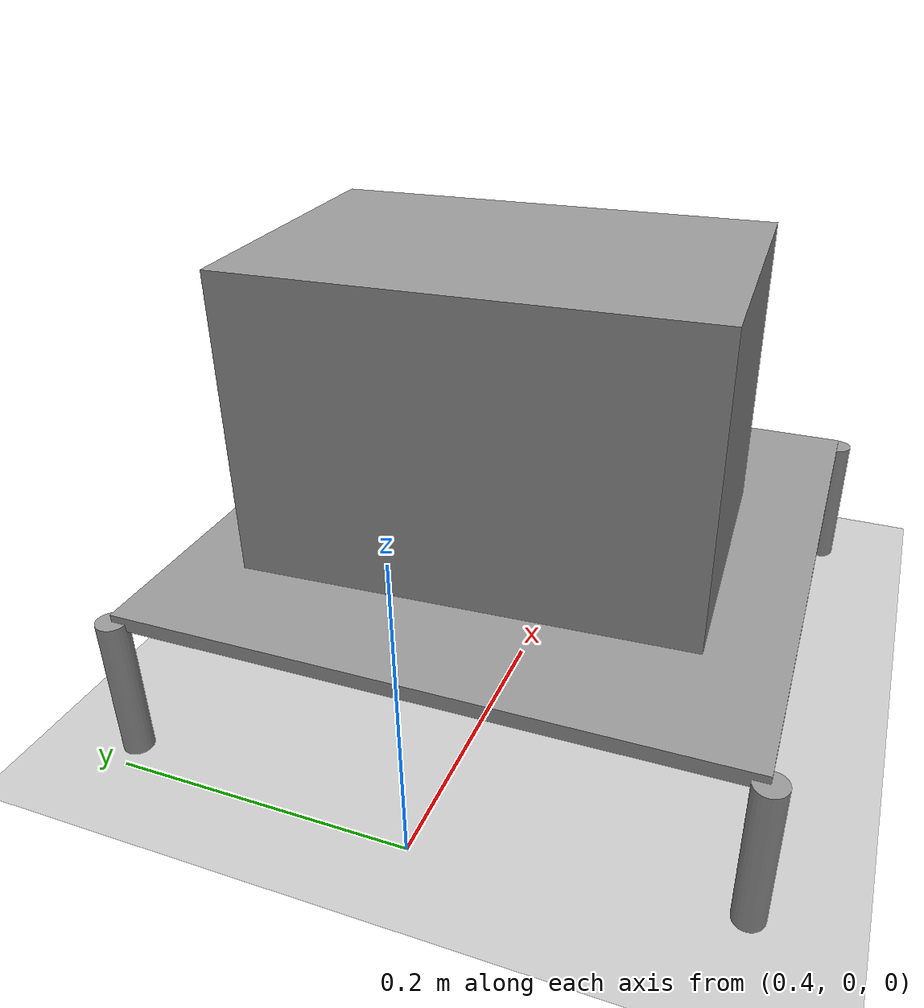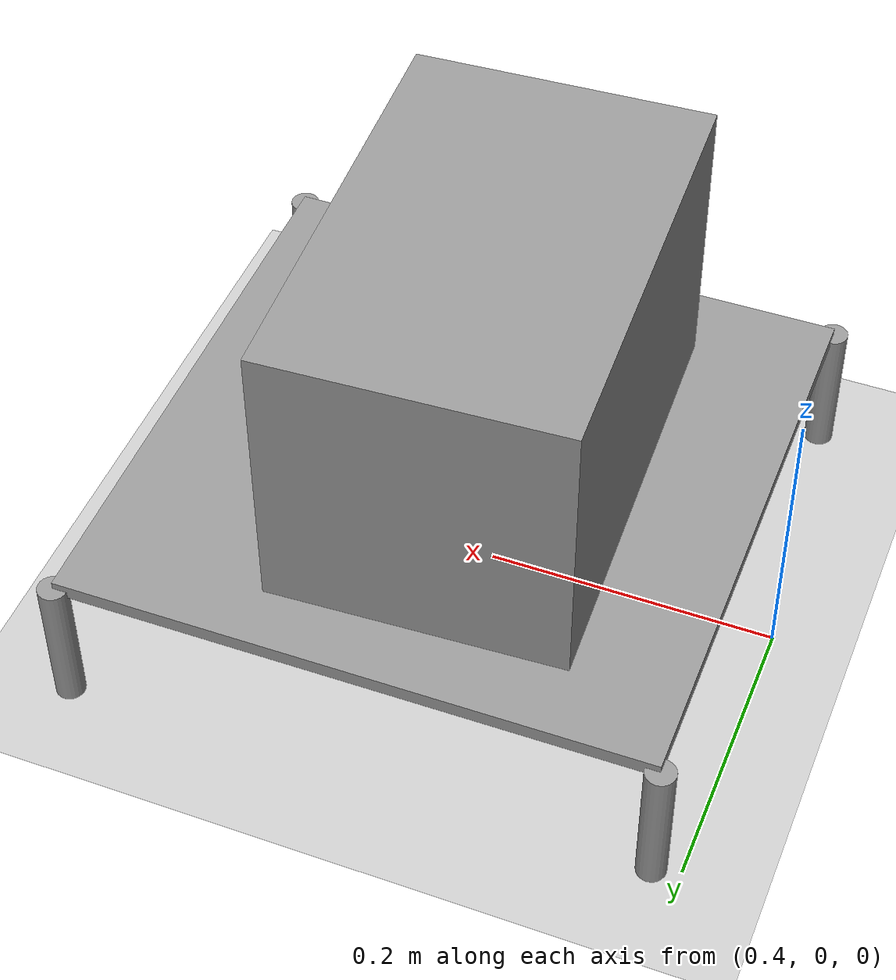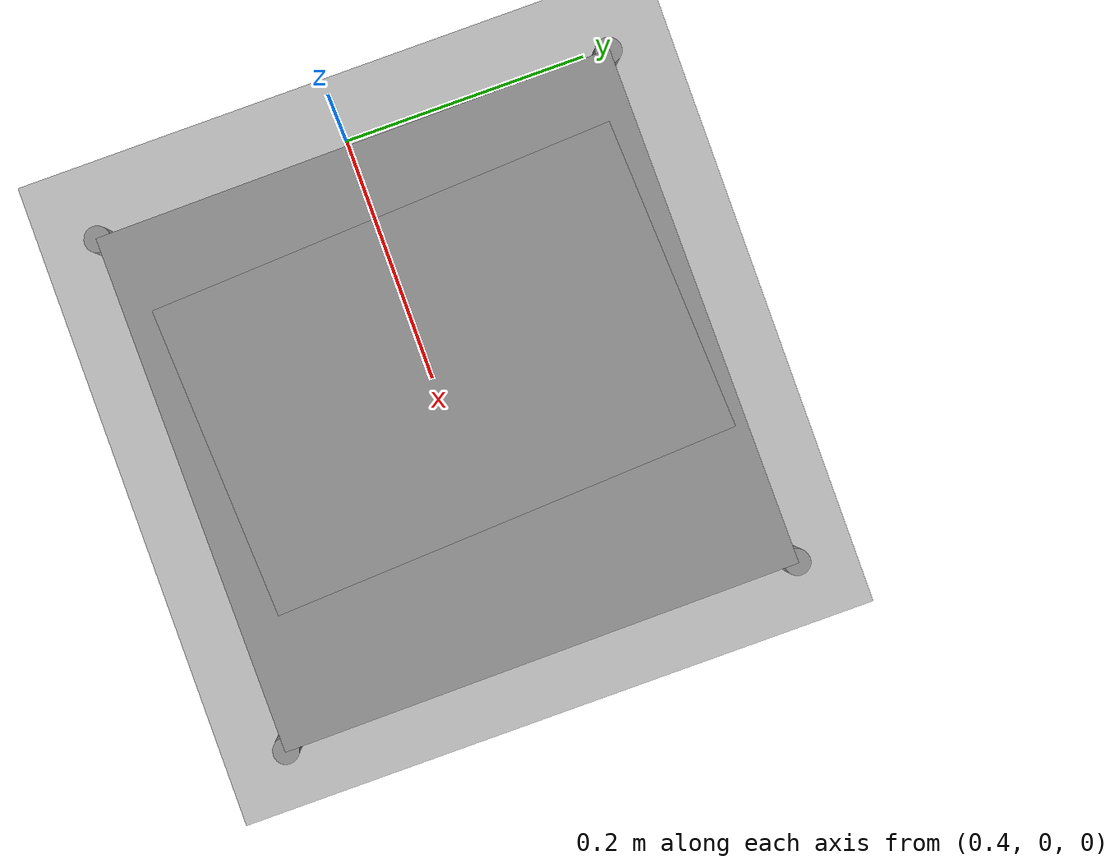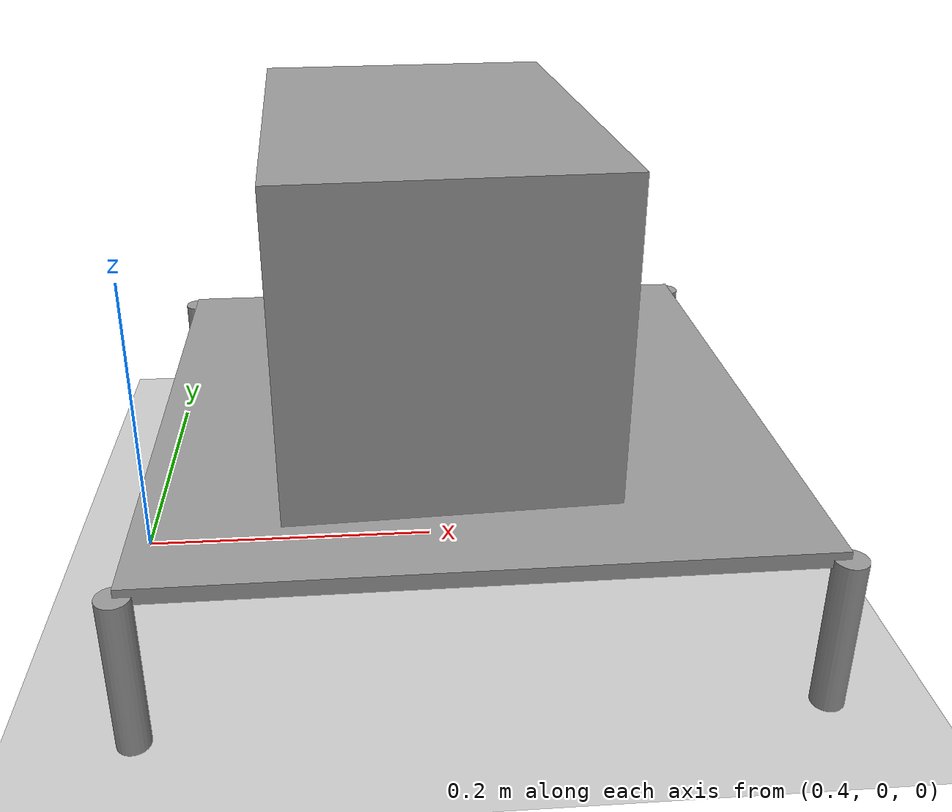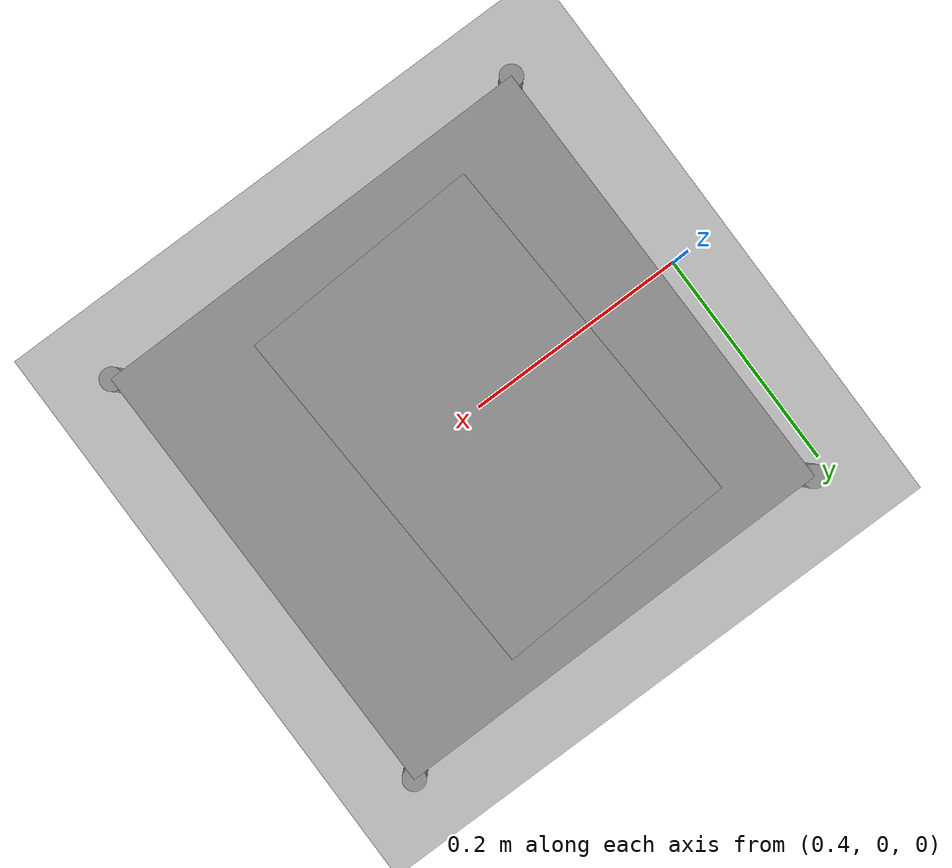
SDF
<sdf version="1.7">
 <world name="default">
  <light name="sun" type="directional">
   <pose>0 0 10 0 -0 0</pose>
   <diffuse>0.8 0.8 0.8 1</diffuse>
   <specular>0.2 0.2 0.2 1</specular>
   <attenuation>
    <range>1000</range>
    <constant>0.9</constant>
    <linear>0.01</linear>
    <quadratic>0.001</quadratic>
   </attenuation>
   <direction>-0.5 0.1 -0.9</direction>
   <spot><inner_angle>0</inner_angle><outer_angle>0</outer_angle><falloff>0</falloff></spot>
  </light>
  <model name="ground_plane">
   <static>1</static>
   <link name="link">
    <collision name="collision">
     <geometry><plane><normal>0 0 1</normal><size>100 100</size></plane></geometry>
     <surface>
      <contact><collide_bitmask>65535</collide_bitmask></contact>
      <friction><ode><mu>100</mu><mu2>50</mu2></ode></friction>
     </surface>
    </collision>
    <visual name="visual">
     <cast_shadows>0</cast_shadows>
     <geometry><plane><normal>0 0 1</normal><size>100 100</size></plane></geometry>
     <material>
      <script><uri>file://media/materials/scripts/gazebo.material</uri><name>Gazebo/Grey</name></script>
     </material>
    </visual>
   </link>
  </model>
  <gravity>0 0 -9.8</gravity>
  <magnetic_field>6e-06 2.3e-05 -4.2e-05</magnetic_field>
  <atmosphere type="adiabatic"/>
  <physics type="ode">
   <max_step_size>0.001</max_step_size>
   <real_time_factor>1</real_time_factor>
   <real_time_update_rate>1000</real_time_update_rate>
  </physics>
  <scene><ambient>0.4 0.4 0.4 1</ambient><background>0.7 0.7 0.7 1</background><shadows>1</shadows></scene>
  <spherical_coordinates>
   <surface_model>EARTH_WGS84</surface_model>
   <latitude_deg>0</latitude_deg>
   <longitude_deg>0</longitude_deg>
   <elevation>0</elevation>
   <heading_deg>0</heading_deg>
  </spherical_coordinates>
  <model name="box">
   <link name="link_2">
    <inertial>
     <mass>1</mass>
     <inertia>
      <ixx>0.0108333</ixx>
      <ixy>0</ixy>
      <ixz>0</ixz>
      <iyy>0.00666667</iyy>
      <iyz>0</iyz>
      <izz>0.0108333</izz>
     </inertia>
    </inertial>
    <visual name="visual">
     <geometry><box><size>0.2 0.3 0.2</size></box></geometry>
     <material>
      <lighting>1</lighting>
      <script><uri>file://media/materials/scripts/gazebo.material</uri><name>Gazebo/Grey</name></script>
      <shader type="pixel"><normal_map>__default__</normal_map></shader>
      <ambient>0.3 0.3 0.3 1</ambient>
      <diffuse>0.7 0.7 0.7 1</diffuse>
      <specular>0.01 0.01 0.01 1</specular>
      <emissive>0 0 0 1</emissive>
     </material>
    </visual>
    <collision name="collision">
     <geometry><box><size>0.2 0.3 0.2</size></box></geometry>
     <surface>
      <friction>
       <ode><mu>1</mu><mu2>1</mu2><fdir1>0 0 0</fdir1><slip1>0</slip1><slip2>0</slip2></ode>
       <torsional>
        <coefficient>1</coefficient>
        <patch_radius>0</patch_radius>
        <surface_radius>0</surface_radius>
        <use_patch_radius>1</use_patch_radius>
        <ode><slip>0</slip></ode>
       </torsional>
      </friction>
      <bounce><restitution_coefficient>0</restitution_coefficient><threshold>1e+06</threshold></bounce>
      <contact>
       <collide_without_contact>0</collide_without_contact>
       <collide_without_contact_bitmask>1</collide_without_contact_bitmask>
       <collide_bitmask>1</collide_bitmask>
       <ode>
        <soft_cfm>0</soft_cfm>
        <soft_erp>0.2</soft_erp>
        <kp>1e+13</kp>
        <kd>1</kd>
        <max_vel>0.01</max_vel>
        <min_depth>0</min_depth>
       </ode>
       <bullet>
        <split_impulse>1</split_impulse>
        <split_impulse_penetration_threshold>-0.01</split_impulse_penetration_threshold>
        <soft_cfm>0</soft_cfm>
        <soft_erp>0.2</soft_erp>
        <kp>1e+13</kp>
        <kd>1</kd>
       </bullet>
      </contact>
     </surface>
    </collision>
   </link>
   <static>0</static>
   <pose>0.6 0.010834 0.204994 -1e-06 -6e-05 0.048793</pose>
  </model>
  <model name="sunban">
   <link name="link_0">
    <inertial>
     <mass>10</mass>
     <inertia>
      <ixx>0.133417</ixx>
      <ixy>0</ixy>
      <ixz>0</ixz>
      <iyy>0.133417</iyy>
      <iyz>0</iyz>
      <izz>0.266667</izz>
     </inertia>
    </inertial>
    <pose>0.293343 -0.238204 0 0 -0 0</pose>
    <visual name="visual">
     <geometry><box><size>0.4 0.4 0.01</size></box></geometry>
     <material>
      <lighting>1</lighting>
      <script><uri>file://media/materials/scripts/gazebo.material</uri><name>Gazebo/Grey</name></script>
      <shader type="pixel"><normal_map>__default__</normal_map></shader>
      <ambient>0.3 0.3 0.3 1</ambient>
      <diffuse>0.7 0.7 0.7 1</diffuse>
      <specular>0.01 0.01 0.01 1</specular>
      <emissive>0 0 0 1</emissive>
     </material>
    </visual>
    <collision name="collision">
     <geometry><box><size>0.4 0.4 0.01</size></box></geometry>
     <surface>
      <friction>
       <ode><mu>1</mu><mu2>1</mu2><fdir1>0 0 0</fdir1><slip1>0</slip1><slip2>0</slip2></ode>
       <torsional>
        <coefficient>1</coefficient>
        <patch_radius>0</patch_radius>
        <surface_radius>0</surface_radius>
        <use_patch_radius>1</use_patch_radius>
        <ode><slip>0</slip></ode>
       </torsional>
      </friction>
      <bounce><restitution_coefficient>0</restitution_coefficient><threshold>1e+06</threshold></bounce>
      <contact>
       <collide_without_contact>0</collide_without_contact>
       <collide_without_contact_bitmask>1</collide_without_contact_bitmask>
       <collide_bitmask>1</collide_bitmask>
       <ode>
        <soft_cfm>0</soft_cfm>
        <soft_erp>0.2</soft_erp>
        <kp>1e+13</kp>
        <kd>1</kd>
        <max_vel>0.01</max_vel>
        <min_depth>0</min_depth>
       </ode>
       <bullet>
        <split_impulse>1</split_impulse>
        <split_impulse_penetration_threshold>-0.01</split_impulse_penetration_threshold>
        <soft_cfm>0</soft_cfm>
        <soft_erp>0.2</soft_erp>
        <kp>1e+13</kp>
        <kd>1</kd>
       </bullet>
      </contact>
     </surface>
    </collision>
   </link>
   <link name="link_1">
    <inertial>
     <mass>1</mass>
     <inertia><ixx>0.145833</ixx><ixy>0</ixy><ixz>0</ixz><iyy>0.145833</iyy><iyz>0</iyz><izz>0.125</izz></inertia>
    </inertial>
    <pose>0.493343 -0.438204 -0.05 0 -0 0</pose>
    <visual name="visual">
     <geometry><cylinder><radius>0.01</radius><length>0.1</length></cylinder></geometry>
     <material>
      <lighting>1</lighting>
      <script><uri>file://media/materials/scripts/gazebo.material</uri><name>Gazebo/Grey</name></script>
      <shader type="pixel"><normal_map>__default__</normal_map></shader>
      <ambient>0.3 0.3 0.3 1</ambient>
      <diffuse>0.7 0.7 0.7 1</diffuse>
      <specular>0.01 0.01 0.01 1</specular>
      <emissive>0 0 0 1</emissive>
     </material>
    </visual>
    <collision name="collision">
     <geometry><cylinder><radius>0.01</radius><length>0.1</length></cylinder></geometry>
     <surface>
      <friction>
       <ode><mu>1</mu><mu2>1</mu2><fdir1>0 0 0</fdir1><slip1>0</slip1><slip2>0</slip2></ode>
       <torsional>
        <coefficient>1</coefficient>
        <patch_radius>0</patch_radius>
        <surface_radius>0</surface_radius>
        <use_patch_radius>1</use_patch_radius>
        <ode><slip>0</slip></ode>
       </torsional>
      </friction>
      <bounce><restitution_coefficient>0</restitution_coefficient><threshold>1e+06</threshold></bounce>
      <contact>
       <collide_without_contact>0</collide_without_contact>
       <collide_without_contact_bitmask>1</collide_without_contact_bitmask>
       <collide_bitmask>1</collide_bitmask>
       <ode>
        <soft_cfm>0</soft_cfm>
        <soft_erp>0.2</soft_erp>
        <kp>1e+13</kp>
        <kd>1</kd>
        <max_vel>0.01</max_vel>
        <min_depth>0</min_depth>
       </ode>
       <bullet>
        <split_impulse>1</split_impulse>
        <split_impulse_penetration_threshold>-0.01</split_impulse_penetration_threshold>
        <soft_cfm>0</soft_cfm>
        <soft_erp>0.2</soft_erp>
        <kp>1e+13</kp>
        <kd>1</kd>
       </bullet>
      </contact>
     </surface>
    </collision>
   </link>
   <link name="link_1_clone">
    <inertial>
     <mass>1</mass>
     <inertia><ixx>0.145833</ixx><ixy>0</ixy><ixz>0</ixz><iyy>0.145833</iyy><iyz>0</iyz><izz>0.125</izz></inertia>
    </inertial>
    <pose>0.093343 -0.038204 -0.05 0 -0 0</pose>
    <visual name="visual">
     <geometry><cylinder><radius>0.01</radius><length>0.1</length></cylinder></geometry>
     <material>
      <lighting>1</lighting>
      <script><uri>file://media/materials/scripts/gazebo.material</uri><name>Gazebo/Grey</name></script>
      <shader type="pixel"><normal_map>__default__</normal_map></shader>
      <ambient>0.3 0.3 0.3 1</ambient>
      <diffuse>0.7 0.7 0.7 1</diffuse>
      <specular>0.01 0.01 0.01 1</specular>
      <emissive>0 0 0 1</emissive>
     </material>
    </visual>
    <collision name="collision">
     <geometry><cylinder><radius>0.01</radius><length>0.1</length></cylinder></geometry>
     <surface>
      <friction>
       <ode><mu>1</mu><mu2>1</mu2><fdir1>0 0 0</fdir1><slip1>0</slip1><slip2>0</slip2></ode>
       <torsional>
        <coefficient>1</coefficient>
        <patch_radius>0</patch_radius>
        <surface_radius>0</surface_radius>
        <use_patch_radius>1</use_patch_radius>
        <ode><slip>0</slip></ode>
       </torsional>
      </friction>
      <bounce><restitution_coefficient>0</restitution_coefficient><threshold>1e+06</threshold></bounce>
      <contact>
       <collide_without_contact>0</collide_without_contact>
       <collide_without_contact_bitmask>1</collide_without_contact_bitmask>
       <collide_bitmask>1</collide_bitmask>
       <ode>
        <soft_cfm>0</soft_cfm>
        <soft_erp>0.2</soft_erp>
        <kp>1e+13</kp>
        <kd>1</kd>
        <max_vel>0.01</max_vel>
        <min_depth>0</min_depth>
       </ode>
       <bullet>
        <split_impulse>1</split_impulse>
        <split_impulse_penetration_threshold>-0.01</split_impulse_penetration_threshold>
        <soft_cfm>0</soft_cfm>
        <soft_erp>0.2</soft_erp>
        <kp>1e+13</kp>
        <kd>1</kd>
       </bullet>
      </contact>
     </surface>
    </collision>
   </link>
   <link name="link_1_clone_0">
    <inertial>
     <mass>1</mass>
     <inertia><ixx>0.145833</ixx><ixy>0</ixy><ixz>0</ixz><iyy>0.145833</iyy><iyz>0</iyz><izz>0.125</izz></inertia>
    </inertial>
    <pose>0.093343 -0.438204 -0.05 0 -0 0</pose>
    <visual name="visual">
     <geometry><cylinder><radius>0.01</radius><length>0.1</length></cylinder></geometry>
     <material>
      <lighting>1</lighting>
      <script><uri>file://media/materials/scripts/gazebo.material</uri><name>Gazebo/Grey</name></script>
      <shader type="pixel"><normal_map>__default__</normal_map></shader>
      <ambient>0.3 0.3 0.3 1</ambient>
      <diffuse>0.7 0.7 0.7 1</diffuse>
      <specular>0.01 0.01 0.01 1</specular>
      <emissive>0 0 0 1</emissive>
     </material>
    </visual>
    <collision name="collision">
     <geometry><cylinder><radius>0.01</radius><length>0.1</length></cylinder></geometry>
     <surface>
      <friction>
       <ode><mu>1</mu><mu2>1</mu2><fdir1>0 0 0</fdir1><slip1>0</slip1><slip2>0</slip2></ode>
       <torsional>
        <coefficient>1</coefficient>
        <patch_radius>0</patch_radius>
        <surface_radius>0</surface_radius>
        <use_patch_radius>1</use_patch_radius>
        <ode><slip>0</slip></ode>
       </torsional>
      </friction>
      <bounce><restitution_coefficient>0</restitution_coefficient><threshold>1e+06</threshold></bounce>
      <contact>
       <collide_without_contact>0</collide_without_contact>
       <collide_without_contact_bitmask>1</collide_without_contact_bitmask>
       <collide_bitmask>1</collide_bitmask>
       <ode>
        <soft_cfm>0</soft_cfm>
        <soft_erp>0.2</soft_erp>
        <kp>1e+13</kp>
        <kd>1</kd>
        <max_vel>0.01</max_vel>
        <min_depth>0</min_depth>
       </ode>
       <bullet>
        <split_impulse>1</split_impulse>
        <split_impulse_penetration_threshold>-0.01</split_impulse_penetration_threshold>
        <soft_cfm>0</soft_cfm>
        <soft_erp>0.2</soft_erp>
        <kp>1e+13</kp>
        <kd>1</kd>
       </bullet>
      </contact>
     </surface>
    </collision>
   </link>
   <link name="link_1_clone_1">
    <inertial>
     <mass>1</mass>
     <inertia><ixx>0.145833</ixx><ixy>0</ixy><ixz>0</ixz><iyy>0.145833</iyy><iyz>0</iyz><izz>0.125</izz></inertia>
    </inertial>
    <pose>0.493343 -0.038204 -0.05 0 -0 0</pose>
    <visual name="visual">
     <geometry><cylinder><radius>0.01</radius><length>0.1</length></cylinder></geometry>
     <material>
      <lighting>1</lighting>
      <script><uri>file://media/materials/scripts/gazebo.material</uri><name>Gazebo/Grey</name></script>
      <shader type="pixel"><normal_map>__default__</normal_map></shader>
      <ambient>0.3 0.3 0.3 1</ambient>
      <diffuse>0.7 0.7 0.7 1</diffuse>
      <specular>0.01 0.01 0.01 1</specular>
      <emissive>0 0 0 1</emissive>
     </material>
    </visual>
    <collision name="collision">
     <geometry><cylinder><radius>0.01</radius><length>0.1</length></cylinder></geometry>
     <surface>
      <friction>
       <ode><mu>1</mu><mu2>1</mu2><fdir1>0 0 0</fdir1><slip1>0</slip1><slip2>0</slip2></ode>
       <torsional>
        <coefficient>1</coefficient>
        <patch_radius>0</patch_radius>
        <surface_radius>0</surface_radius>
        <use_patch_radius>1</use_patch_radius>
        <ode><slip>0</slip></ode>
       </torsional>
      </friction>
      <bounce><restitution_coefficient>0</restitution_coefficient><threshold>1e+06</threshold></bounce>
      <contact>
       <collide_without_contact>0</collide_without_contact>
       <collide_without_contact_bitmask>1</collide_without_contact_bitmask>
       <collide_bitmask>1</collide_bitmask>
       <ode>
        <soft_cfm>0</soft_cfm>
        <soft_erp>0.2</soft_erp>
        <kp>1e+13</kp>
        <kd>1</kd>
        <max_vel>0.01</max_vel>
        <min_depth>0</min_depth>
       </ode>
       <bullet>
        <split_impulse>1</split_impulse>
        <split_impulse_penetration_threshold>-0.01</split_impulse_penetration_threshold>
        <soft_cfm>0</soft_cfm>
        <soft_erp>0.2</soft_erp>
        <kp>1e+13</kp>
        <kd>1</kd>
       </bullet>
      </contact>
     </surface>
    </collision>
   </link>
   <joint name="link_0_JOINT_1" type="fixed">
    <parent>link_0</parent>
    <child>link_1_clone</child>
    <physics>
     <ode><limit><cfm>0</cfm><erp>0.2</erp></limit><suspension><cfm>0</cfm><erp>0.2</erp></suspension></ode>
    </physics>
   </joint>
   <joint name="link_0_JOINT_2" type="fixed">
    <parent>link_0</parent>
    <child>link_1_clone_1</child>
    <physics>
     <ode><limit><cfm>0</cfm><erp>0.2</erp></limit><suspension><cfm>0</cfm><erp>0.2</erp></suspension></ode>
    </physics>
   </joint>
   <joint name="link_0_JOINT_3" type="revolute">
    <parent>link_0</parent>
    <child>link_1_clone_0</child>
    <axis>
     <xyz>1 0 0</xyz>
     <limit>
      <lower>-1.79769e+308</lower>
      <upper>1.79769e+308</upper>
      <effort>-1</effort>
      <velocity>-1</velocity>
     </limit>
     <dynamics>
      <spring_reference>0</spring_reference>
      <spring_stiffness>0</spring_stiffness>
      <damping>0</damping>
      <friction>0</friction>
     </dynamics>
    </axis>
    <physics>
     <ode><limit><cfm>0</cfm><erp>0.2</erp></limit><suspension><cfm>0</cfm><erp>0.2</erp></suspension></ode>
    </physics>
   </joint>
   <joint name="link_0_JOINT_4" type="revolute">
    <parent>link_0</parent>
    <child>link_1</child>
    <axis>
     <xyz>1 0 0</xyz>
     <limit>
      <lower>-1.79769e+308</lower>
      <upper>1.79769e+308</upper>
      <effort>-1</effort>
      <velocity>-1</velocity>
     </limit>
     <dynamics>
      <spring_reference>0</spring_reference>
      <spring_stiffness>0</spring_stiffness>
      <damping>0</damping>
      <friction>0</friction>
     </dynamics>
    </axis>
    <physics>
     <ode><limit><cfm>0</cfm><erp>0.2</erp></limit><suspension><cfm>0</cfm><erp>0.2</erp></suspension></ode>
    </physics>
   </joint>
   <static>0</static>
   <pose>0.324957 0.241377 0.099997 8e-06 -6e-06 0.00896</pose>
  </model>
 </world>
</sdf>
